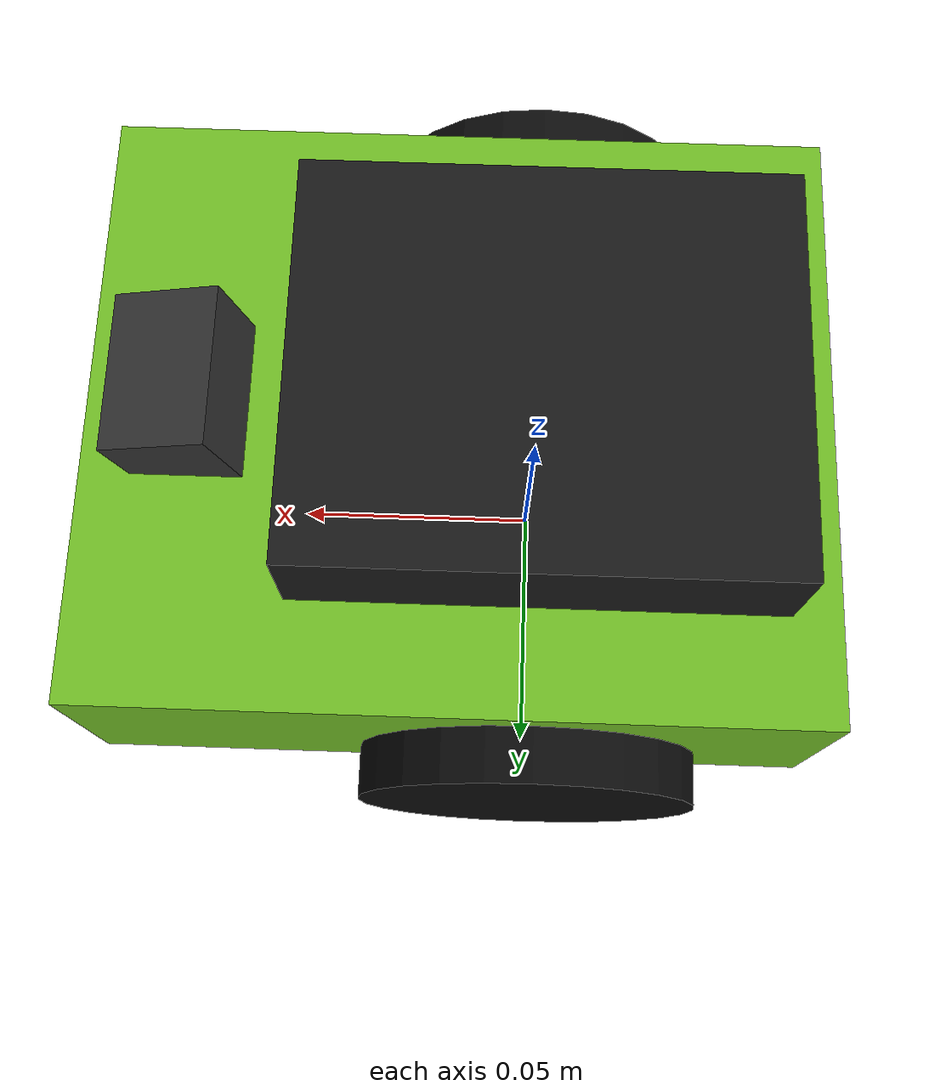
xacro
<?xml version="1.0"?>
<robot xmlns:xacro="http://www.ros.org/wiki/xacro" name="jetbot">

  <!-- NVIDIA JetBot Comparative Baseline Model                           -->
  <!-- Track width: 110mm, Wheel diameter: 65mm, Total mass: ~0.90kg       -->

  <xacro:property name="wheel_radius" value="0.0325"/>
  <xacro:property name="wheel_width" value="0.025"/>
  <xacro:property name="wheel_separation" value="0.110"/>
  <xacro:property name="wheel_mass" value="0.035"/>

  <!-- Base Footprint at ground level -->
  <link name="base_footprint"/>

  <joint name="base_joint" type="fixed">
    <parent link="base_footprint"/>
    <child link="base_link"/>
    <origin xyz="0 0 0.0325" rpy="0 0 0"/>
  </joint>

  <!-- Base Link -->
  <link name="base_link">
    <!-- Main 3D printed / molded chassis body -->
    <visual>
      <origin xyz="0.015 0 0.015" rpy="0 0 0"/>
      <geometry>
        <box size="0.138 0.115 0.045"/>
      </geometry>
      <material name="jetbot_green">
        <color rgba="0.45 0.75 0.15 1.0"/>
      </material>
    </visual>
    <!-- Jetson Nano module with black heatsink -->
    <visual>
      <origin xyz="0.0 0 0.048" rpy="0 0 0"/>
      <geometry>
        <box size="0.090 0.075 0.025"/>
      </geometry>
      <material name="heatsink_black">
        <color rgba="0.1 0.1 0.1 1.0"/>
      </material>
    </visual>
    <!-- Front camera mount -->
    <visual>
      <origin xyz="0.065 0 0.040" rpy="0 0.25 0"/>
      <geometry>
        <box size="0.020 0.030 0.025"/>
      </geometry>
      <material name="camera_mount">
        <color rgba="0.2 0.2 0.2 1.0"/>
      </material>
    </visual>
    <collision>
      <origin xyz="0.015 0 0.025" rpy="0 0 0"/>
      <geometry>
        <box size="0.138 0.115 0.065"/>
      </geometry>
    </collision>
    <inertial>
      <origin xyz="0.015 0 0.020" rpy="0 0 0"/>
      <mass value="0.750"/>
      <inertia ixx="0.0018" ixy="0.0" ixz="0.0" iyy="0.0020" iyz="0.0" izz="0.0028"/>
    </inertial>
  </link>

  <!-- Left and Right Wheels                                               -->
  <xacro:macro name="jetbot_wheel" params="prefix y_reflect">
    <link name="${prefix}_wheel_link">
      <visual>
        <origin xyz="0 0 0" rpy="${pi/2} 0 0"/>
        <geometry>
          <cylinder radius="${wheel_radius}" length="${wheel_width}"/>
        </geometry>
        <material name="wheel_rim">
          <color rgba="0.05 0.05 0.05 1.0"/>
        </material>
      </visual>
      <collision>
        <origin xyz="0 0 0" rpy="${pi/2} 0 0"/>
        <geometry>
          <cylinder radius="${wheel_radius}" length="${wheel_width}"/>
        </geometry>
      </collision>
      <inertial>
        <origin xyz="0 0 0" rpy="${pi/2} 0 0"/>
        <mass value="${wheel_mass}"/>
        <inertia
          ixx="${(1.0/12.0) * wheel_mass * (3*wheel_radius*wheel_radius + wheel_width*wheel_width)}"
          ixy="0.0" ixz="0.0"
          iyy="${(1.0/12.0) * wheel_mass * (3*wheel_radius*wheel_radius + wheel_width*wheel_width)}"
          iyz="0.0"
          izz="${(1.0/2.0) * wheel_mass * (wheel_radius*wheel_radius)}"/>
      </inertial>
    </link>

    <joint name="${prefix}_wheel_joint" type="continuous">
      <parent link="base_link"/>
      <child link="${prefix}_wheel_link"/>
      <origin xyz="0.0 ${y_reflect * wheel_separation / 2.0} 0.0" rpy="0 0 0"/>
      <axis xyz="0 1 0"/>
    </joint>
  </xacro:macro>

  <xacro:jetbot_wheel prefix="left" y_reflect="1"/>
  <xacro:jetbot_wheel prefix="right" y_reflect="-1"/>

  <!-- Passive Front Caster Ball                                           -->
  <link name="caster_link">
    <visual>
      <origin xyz="0 0 0" rpy="0 0 0"/>
      <geometry>
        <sphere radius="0.0075"/>
      </geometry>
      <material name="caster_steel">
        <color rgba="0.7 0.7 0.7 1.0"/>
      </material>
    </visual>
    <collision>
      <origin xyz="0 0 0" rpy="0 0 0"/>
      <geometry>
        <sphere radius="0.0075"/>
      </geometry>
    </collision>
    <inertial>
      <origin xyz="0 0 0" rpy="0 0 0"/>
      <mass value="0.010"/>
      <inertia ixx="1e-6" ixy="0" ixz="0" iyy="1e-6" iyz="0" izz="1e-6"/>
    </inertial>
  </link>

  <joint name="caster_joint" type="fixed">
    <parent link="base_link"/>
    <child link="caster_link"/>
    <origin xyz="0.060 0.0 -0.025" rpy="0 0 0"/>
  </joint>

  <!-- Standardized Sensors: IMU & Tracking Sigil Link                     -->
  <link name="imu_link">
    <inertial>
      <origin xyz="0 0 0" rpy="0 0 0"/>
      <mass value="0.005"/>
      <inertia ixx="1e-6" ixy="0" ixz="0" iyy="1e-6" iyz="0" izz="1e-6"/>
    </inertial>
  </link>

  <joint name="imu_joint" type="fixed">
    <parent link="base_link"/>
    <child link="imu_link"/>
    <origin xyz="0.0 0 0.025" rpy="0 0 0"/>
  </joint>

  <link name="tracking_sigil_link">
    <inertial>
      <origin xyz="0 0 0" rpy="0 0 0"/>
      <mass value="0.001"/>
      <inertia ixx="1e-7" ixy="0" ixz="0" iyy="1e-7" iyz="0" izz="1e-7"/>
    </inertial>
  </link>

  <joint name="tracking_sigil_joint" type="fixed">
    <parent link="base_link"/>
    <child link="tracking_sigil_link"/>
    <origin xyz="0.0 0 0.080" rpy="0 0 0"/>
  </joint>

  <!-- Gazebo Physics and Plugins                                          -->
  <gazebo reference="base_link">
    <material>Gazebo/Green</material>
  </gazebo>

  <gazebo reference="left_wheel_link">
    <mu1>1.0</mu1>
    <mu2>1.0</mu2>
    <kp>1000000.0</kp>
    <kd>100.0</kd>
    <material>Gazebo/DarkGrey</material>
  </gazebo>

  <gazebo reference="right_wheel_link">
    <mu1>1.0</mu1>
    <mu2>1.0</mu2>
    <kp>1000000.0</kp>
    <kd>100.0</kd>
    <material>Gazebo/DarkGrey</material>
  </gazebo>

  <gazebo reference="caster_link">
    <mu1>0.001</mu1>
    <mu2>0.001</mu2>
    <kp>1000000.0</kp>
    <kd>10.0</kd>
    <material>Gazebo/Grey</material>
  </gazebo>

  <!-- Differential Drive Plugin (standardized topics: /cmd_vel, /odom) -->
  <gazebo>
    <plugin name="jetbot_diff_drive" filename="libgazebo_ros_diff_drive.so">
      <ros>
        <namespace>/</namespace>
        <remapping>cmd_vel:=cmd_vel</remapping>
        <remapping>odom:=odom</remapping>
      </ros>
      <update_rate>100</update_rate>
      <left_joint>left_wheel_joint</left_joint>
      <right_joint>right_wheel_joint</right_joint>
      <wheel_separation>${wheel_separation}</wheel_separation>
      <wheel_diameter>${2 * wheel_radius}</wheel_diameter>
      <max_wheel_torque>0.5</max_wheel_torque>
      <max_wheel_acceleration>6.0</max_wheel_acceleration>
      <publish_odom>true</publish_odom>
      <publish_odom_tf>true</publish_odom_tf>
      <publish_wheel_tf>true</publish_wheel_tf>
      <odometry_frame>odom</odometry_frame>
      <robot_base_frame>base_footprint</robot_base_frame>
    </plugin>
  </gazebo>

  <!-- IMU Sensor Plugin (standardized topic: /imu/data) -->
  <gazebo reference="imu_link">
    <sensor name="jetbot_imu" type="imu">
      <always_on>true</always_on>
      <update_rate>100</update_rate>
      <plugin name="jetbot_imu_plugin" filename="libgazebo_ros_imu_sensor.so">
        <ros>
          <namespace>/</namespace>
          <remapping>~/out:=imu/data</remapping>
        </ros>
        <initial_orientation_as_reference>false</initial_orientation_as_reference>
      </plugin>
    </sensor>
  </gazebo>

  <!-- Overhead Ground Truth Pose Plugin (standardized topic: /overhead_tracking/pose) -->
  <gazebo>
    <plugin name="jetbot_overhead_tracking" filename="libgazebo_ros_p3d.so">
      <ros>
        <namespace>/</namespace>
        <remapping>odom:=overhead_tracking/pose</remapping>
      </ros>
      <body_name>base_footprint</body_name>
      <frame_name>world</frame_name>
      <update_rate>60.0</update_rate>
      <xyz_offset>0 0 0</xyz_offset>
      <rpy_offset>0 0 0</rpy_offset>
      <gaussian_noise>0.001</gaussian_noise>
    </plugin>
  </gazebo>

</robot>
